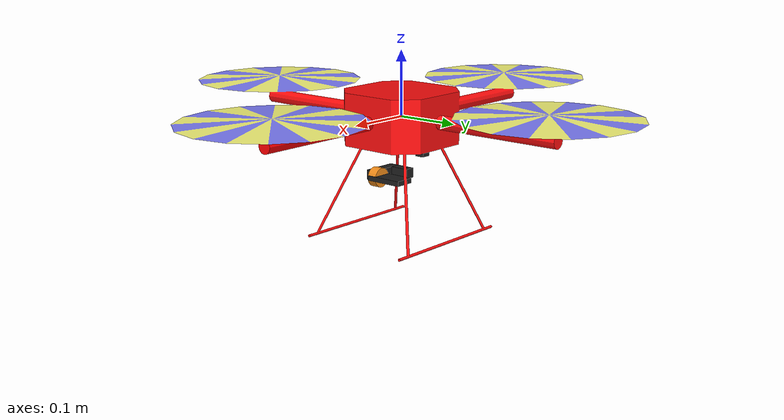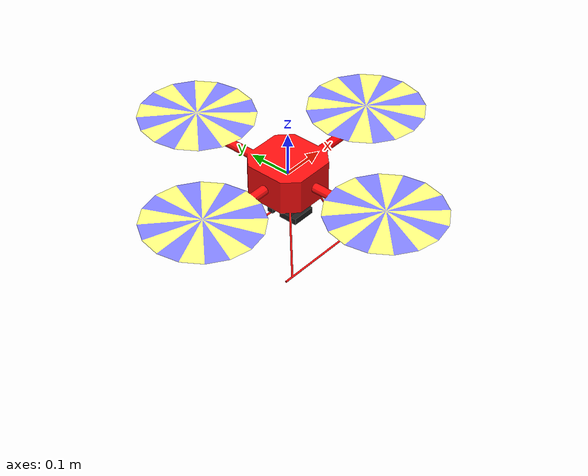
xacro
<?xml version="1.0"?>

<robot
  name="quadrotor"
  xmlns:xacro="http://www.ros.org/wiki/xacro"
>

    <xacro:property name="M_PI" value="3.1415926535897931" />
    <!-- Included URDF Files -->

    <xacro:include filename="$(find hector_quadrotor_description)/urdf/quadrotor_base.urdf.xacro" />
    <xacro:quadrotor_base_macro />

    <xacro:include filename="$(find jsk_mbzirc_common)/urdf/gimbal/gimbal.xacro" />
    <xacro:include filename="$(find jsk_mbzirc_common)/urdf/drone/additional.xacro" />

    <xacro:gimbal name="gimbal1" parent="base_link" topside="false" width="0.015" motor_height="0.015" x="0.04" y="0.03" z="0.06" imu_topic_name="/raw_imu">
      <origin xyz="-0.05 0.0 -0.04" rpy="0 0 0"/>
    </xacro:gimbal>

    <xacro:include filename="$(find hector_sensors_description)/urdf/hokuyo_utm30lx.urdf.xacro" />

    <xacro:include filename="$(find hector_sensors_description)/urdf/generic_camera.urdf.xacro" />

    <xacro:generic_camera name="downward_cam" parent="gimbal1_stabilized_link" ros_topic="camera/image" cam_info_topic="camera/camera_info" update_rate="20" res_x="640" res_y="480" image_format="L8" hfov="160">
      <origin xyz="0.0 0.0 -0.03" rpy="0 ${M_PI/2} 0"/>
    </xacro:generic_camera>

      <xacro:include filename="$(find hector_quadrotor_gazebo)/urdf/quadrotor_plugins.gazebo.xacro" />

</robot>

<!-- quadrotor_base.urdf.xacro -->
<robot xmlns:xacro="http://www.ros.org/wiki/xacro">

  <xacro:property name="pi" value="3.1415926535897931" />

  <!-- Main quadrotor link -->
  <xacro:macro name="quadrotor_base_macro">
    <link name="base_link">
      <inertial>
        <mass value="1.477" />
        <origin xyz="0 0 0" />
        <inertia ixx="0.01152" ixy="0.0" ixz="0.0" iyy="0.01152" iyz="0.0" izz="0.0218" />
      </inertial>

      <visual>
        <origin xyz="0 0 0" rpy="0 0 0" />
        <geometry>
          <mesh filename="package://hector_quadrotor_description/meshes/quadrotor/quadrotor_base.dae"/>
        </geometry>
      </visual>

      <collision>
        <origin xyz="0 0 0" rpy="0 0 0" />
        <geometry>
          <mesh filename="package://hector_quadrotor_description/meshes/quadrotor/quadrotor_base.stl"/>
        </geometry>
      </collision>
    </link>

    <!-- Sonar height sensor -->

  </xacro:macro>
</robot>

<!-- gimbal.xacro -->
<!-- Revolute-Revolute Manipulator -->
<robot name="gimbal_module" xmlns:xacro="http://www.ros.org/wiki/xacro">

<!-- gazebo problem
    problem1: the mass should not be too light(0.01, 0.02g is wrong)
     problem2: the continuous joint should have the root parent(means, there is no tree in the parent)
-->

  <!-- Constants for robot dimensions -->
  <xacro:property name="PI" value="3.1415926535897931"/>
  <xacro:property name="link_mass" value="0.2"/>
  <xacro:property name="motor_mass" value="0.2"/>

  <!-- Import Rviz colors -->
  <xacro:include filename="$(find jsk_mbzirc_common)/urdf/gimbal/materials.xacro" />

  <xacro:macro name="motor" params="name parent *origin motor_height r ">
    <joint name="${name}_motor_joint" type="fixed">
      <xacro:insert_block name="origin" />
      <parent link="${parent}"/>
      <child link="${name}_motor"/>
    </joint>

    <link name="${name}_motor">
      <inertial>
        <mass value="${motor_mass}" />
        <origin xyz="0 0 ${motor_height/2}" rpy="0 0 0" />
        <inertia
            ixx="${motor_mass  * (r*r / 4.0 + motor_height * motor_height/ 12.0)}" ixy="0.0" ixz="0.0"
            iyy="${motor_mass  * (r*r / 4.0 + motor_height * motor_height/ 12.0)}" iyz="0.0"
            izz="${motor_mass / 2.0 * (r*r)}"/>
      </inertial>
      <visual>
        <origin xyz="0 0 ${motor_height/2}" rpy="0 0 0" />
        <geometry>
          <cylinder radius="${r}" length="${motor_height}"/>q
        </geometry>
        <material name="orange"/>
      </visual>
      <collision>
        <origin xyz="0 0 ${motor_height/2}" rpy="0 0 0" />
        <geometry>
          <box size="0.001 0.001 0.001"/>
        </geometry>
      </collision>
    </link>

    <gazebo reference="${name}_motor">
      <mu1>0.2</mu1>
      <mu2>0.2</mu2>
      <material>Gazebo/Orange</material>
    </gazebo>
  </xacro:macro>

  <xacro:macro name="single_link" params="name *origin d1 d2 l">
    <link name="${name}_link">
      <inertial>
        <mass value="${link_mass}" />
        <xacro:insert_block name="origin" />
        <inertia
	    ixx="${link_mass / 12.0 * (d1*d1 + l*l)}" ixy="0.0" ixz="0.0"
	    iyy="${link_mass / 12.0 * (l*l + d2*d2)}" iyz="0.0"
	    izz="${link_mass / 12.0 * (d1*d2 + d1*d2)}"/>
      </inertial>
      <visual>
        <xacro:insert_block name="origin" />
        <geometry>
	  <box size="${d1} ${d2} ${l}"/>
        </geometry>
        <material name="black"/>
      </visual>
      <collision>
        <xacro:insert_block name="origin" />
        <geometry>
          <box size="0.001 0.001 0.001"/>
        </geometry>
      </collision>
    </link>

    <gazebo reference="${name}_link">
      <mu1>0.2</mu1>
      <mu2>0.2</mu2>
      <material>Gazebo/Black</material>
    </gazebo>
  </xacro:macro>

  <xacro:macro name="gimbal" params="name parent topside *origin width motor_height z y x imu_topic_name">
    <joint name="${name}_root_joint" type="fixed">
     <xacro:insert_block name="origin" />
      <parent link="${parent}"/>
      <child link="${name}_first_link"/>
    </joint>

    <xacro:single_link name="${name}_first"  l="${z}" d1="${width}" d2="${width}" >
      <xacro:if value="${topside}">
        <origin xyz="0 0 ${z/2}" rpy="0 0 0" />
      </xacro:if>
      <xacro:unless value="${topside}">
        <origin xyz="0 0 ${-z/2}" rpy="0 0 0" />
      </xacro:unless>
    </xacro:single_link>

    <xacro:motor name="${name}_first" parent="${name}_first_link"  motor_height="${motor_height}" r="${width}" >
      <xacro:if value="${topside}">
        <origin xyz="${width/2} 0.0 ${z - width/2}" rpy="0 ${M_PI/2}  0"/>
      </xacro:if>
      <xacro:unless value="${topside}">
        <origin xyz="${width/2} 0.0 ${-z + width/2}" rpy="0 ${M_PI/2}  0"/>
      </xacro:unless>
    </xacro:motor>

    <joint name="${name}_rotor_joint1" type="continuous">
      <parent link="${name}_first_link"/>
      <child link="${name}_second_link"/>
      <xacro:if value="${topside}">
        <origin xyz="${motor_height + width} 0 ${z - width/2}" rpy="${-M_PI/2} 0 0"/>
      </xacro:if>
      <xacro:unless value="${topside}">
        <origin xyz="${motor_height + width} 0  ${-z + width/2}" rpy="${-M_PI/2} 0 0"/>
      </xacro:unless>
      <axis xyz="1 0 0"/>
      <dynamics damping="0.01"/>
    </joint>

    <xacro:single_link name="${name}_second"  l="${y}" d1="${width}" d2="${width}" >
        <origin xyz="0 0 ${-y/2}" rpy="0 0 0" />
    </xacro:single_link>

    <joint name="second_third_links_joint" type="fixed">
      <origin xyz="${-width/2} 0 ${-y - width/2}" rpy="${M_PI/2} 0 ${-M_PI/2}"/>
      <parent link="${name}_second_link"/>
      <child link="${name}_third_link"/>
    </joint>

    <xacro:single_link name="${name}_third"  l="${x + width}" d1="${width}" d2="${width}" >
        <origin xyz="0 0 ${-x/2 - width/2}" rpy="0 0 0" />
    </xacro:single_link>

    <xacro:motor name="${name}_second" parent="${name}_third_link" motor_height="${motor_height}" r="${width}" >
      <origin xyz="0  ${width/2} ${-x - width}" rpy="${-M_PI/2} 0 0"/>
    </xacro:motor>

    <joint name="${name}_rotor_joint2" type="continuous">
      <parent link="${name}_second_link"/>
      <child link="${name}_stabilized_link"/>
      <origin xyz="${x + width / 2} 0 0" rpy="${M_PI/2} 0 0 "/>
      <axis xyz="0 1 0"/>
      <dynamics damping="0.01"/>
    </joint>

    <xacro:single_link name="${name}_stabilized"  l="${2*y}" d1="${width * 2}" d2="${width/2}" >
      <origin xyz="0 0 0" rpy=" ${M_PI/2} 0 0" />
    </xacro:single_link>

    <gazebo>
      <plugin name="mbzirc_gazebo_gimbal_plugin" filename="libmbzirc_gazebo_gimbal_plugin.so">
        <imuTopic>${imu_topic_name}</imuTopic>
        <firstServoName>${name}_rotor_joint1</firstServoName>
        <secondServoName>${name}_rotor_joint2</secondServoName>
      </plugin>
    </gazebo>

  </xacro:macro>

</robot>

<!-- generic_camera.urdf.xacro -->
<robot xmlns:xacro="http://www.ros.org/wiki/xacro">
  <xacro:arg name="simulator" default="gazebo"/>
  <xacro:property name="M_PI" value="3.1415926535897931" />

  <xacro:macro name="generic_camera" params="name parent *origin ros_topic cam_info_topic update_rate res_x res_y image_format hfov">
    <joint name="${name}_joint" type="fixed">
      <xacro:insert_block name="origin" />
      <parent link="${parent}"/>
      <child link="${name}_link"/>
    </joint>

    <link name="${name}_link">
    </link>

    <joint name="${name}_optical_joint" type="fixed">
      <origin xyz="0 0 0" rpy="${-M_PI/2} 0.0 ${-M_PI/2}" />
      <parent link="${name}_link" />
      <child link="${name}_optical_frame"/>
    </joint>

    <link name="${name}_optical_frame"/>
    <gazebo reference="${name}_link">
      <sensor type="camera" name="${name}_camera_sensor">
        <update_rate>${update_rate}</update_rate>
        <camera>
          <horizontal_fov>${hfov * M_PI/180.0}</horizontal_fov>
          <image>
            <format>${image_format}</format>
            <width>${res_x}</width>
            <height>${res_y}</height>
          </image>
          <clip>
            <near>0.01</near>
            <far>100</far>
          </clip>
        </camera>

        <xacro:if value="${'$(arg simulator)' == 'gazebo'}">
          <plugin name="${name}_camera_controller" filename="libgazebo_ros_camera.so">
            <cameraName>${name}</cameraName>
            <imageTopicName>${ros_topic}</imageTopicName>
            <cameraInfoTopicName>${cam_info_topic}</cameraInfoTopicName>
            <frameName>${name}_optical_frame</frameName>
          </plugin>
        </xacro:if>
      </sensor>
    </gazebo>
  </xacro:macro>

</robot>
